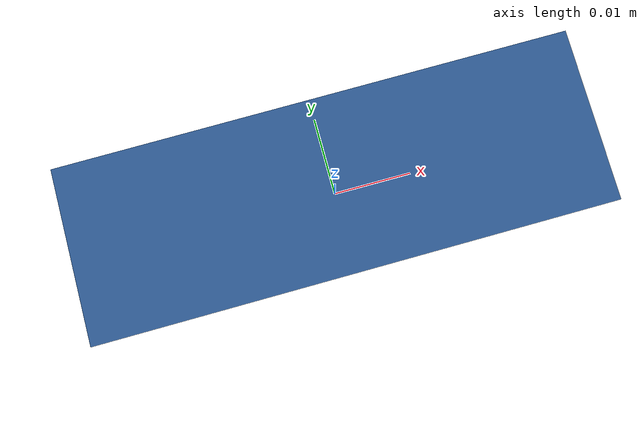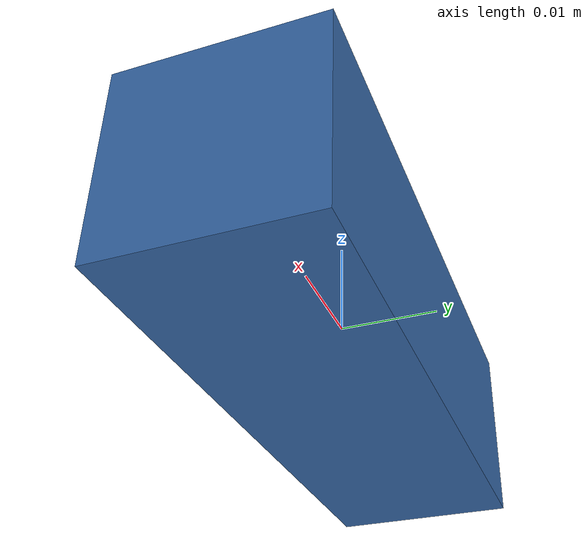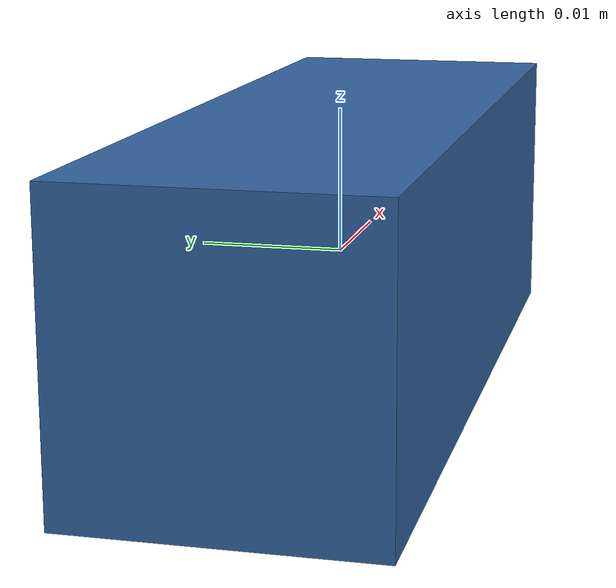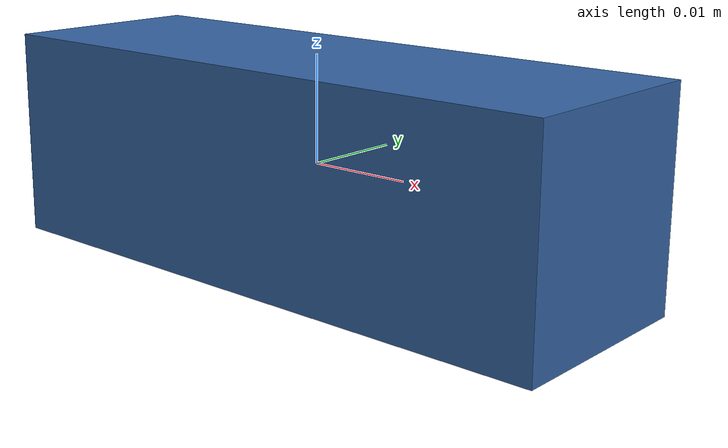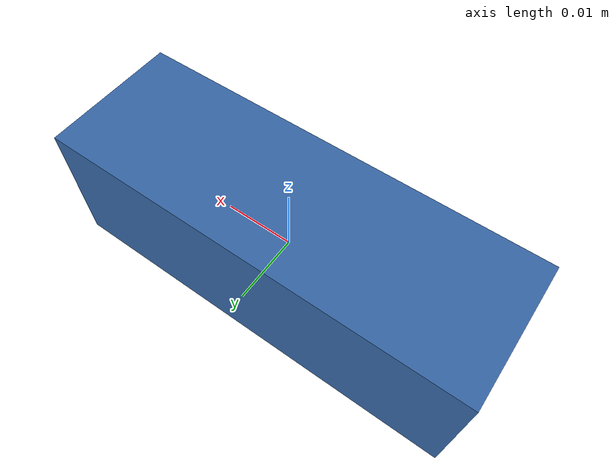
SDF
<?xml version='1.0'?>
<sdf version='1.6'>
  <model name='cube_blue'>
    <link name='link_1'>
      <inertial>
        <mass>1e-4</mass>
        <inertia>
          <ixx>1.0e-8</ixx>
          <ixy>0</ixy>
          <ixz>0</ixz>
          <iyy>1.0e-8</iyy>
          <iyz>0</iyz>
          <izz>1.0e-8</izz>
        </inertia>
        <pose frame=''>0 0 0 0 -0 0</pose>
      </inertial>
      <pose frame=''>0 0 0 0 -0 0</pose>
      <gravity>1</gravity>
      <self_collide>0</self_collide>
      <kinematic>0</kinematic>
      <enable_wind>0</enable_wind>
      <visual name='visual'>
        <pose frame=''>0 0 0 0 -0 0</pose>
        <geometry>
          <box>
            <size>0.06 0.02 0.02</size>
          </box>
        </geometry>
        <material>
          <lighting>1</lighting>
          <script>
            <uri>file://media/materials/scripts/gazebo.material</uri>
            <name>Gazebo/Grey</name>
          </script>
          <shader type='vertex'>
            <normal_map>__default__</normal_map>
          </shader>
          <ambient>0.204 0.396 0.643 1</ambient>
          <diffuse>0.204 0.396 0.643 1</diffuse>
          <specular>0.333 0.341 0.325 1</specular>
          <emissive>0 0 0 1</emissive>
        </material>
        <transparency>0</transparency>
        <cast_shadows>1</cast_shadows>
      </visual>
      <collision name='collision'>
        <laser_retro>0</laser_retro>
        <max_contacts>50</max_contacts>
        <pose frame=''>0 0 0 0 -0 0</pose>
        <geometry>
          <box>
            <size>0.06 0.02 0.02</size>
          </box>
        </geometry>
        <surface>
          <friction>
            <ode>
              <mu>1e6</mu>
              <mu2>1e4</mu2>
            </ode>
            <torsional>
              <coefficient>1</coefficient>
              <patch_radius>0</patch_radius>
              <surface_radius>0</surface_radius>
              <use_patch_radius>1</use_patch_radius>
            </torsional>
          </friction>
          <bounce>
            <restitution_coefficient>0</restitution_coefficient>
            <threshold>1e+06</threshold>
          </bounce>
          <contact>
            <collide_without_contact>0</collide_without_contact>
            <collide_without_contact_bitmask>1</collide_without_contact_bitmask>
            <collide_bitmask>1</collide_bitmask>
            <ode>
              <soft_cfm>0</soft_cfm>
              <soft_erp>0.2</soft_erp>
              <kp>1e+13</kp>
              <kd>1</kd>
              <max_vel>0.0</max_vel>
              <min_depth>0.002</min_depth>
            </ode>
            <bullet>
              <split_impulse>1</split_impulse>
              <split_impulse_penetration_threshold>-0.01</split_impulse_penetration_threshold>
              <soft_cfm>0</soft_cfm>
              <soft_erp>0.2</soft_erp>
              <kp>1e+13</kp>
              <kd>1</kd>
            </bullet>
          </contact>
        </surface>
      </collision>
    </link>
    <static>0</static>
    <allow_auto_disable>1</allow_auto_disable>
  </model>
</sdf>
